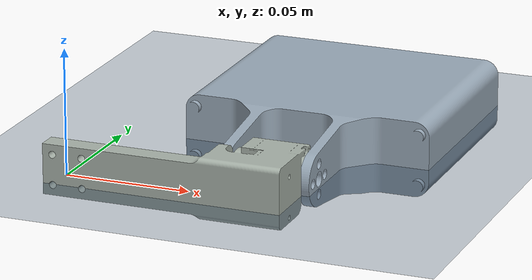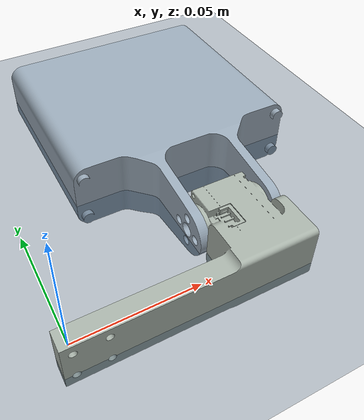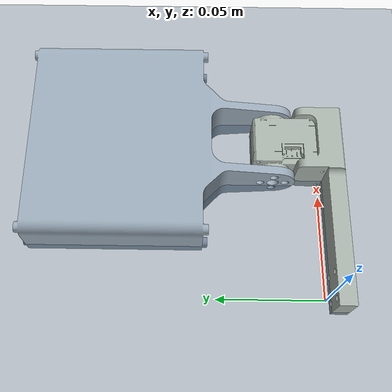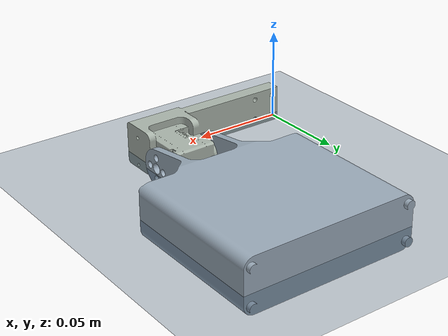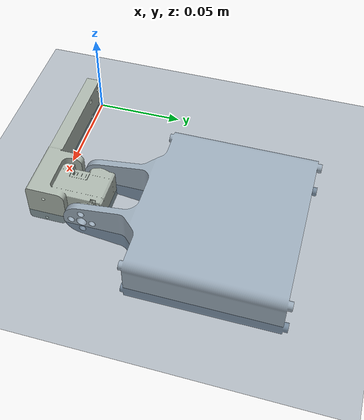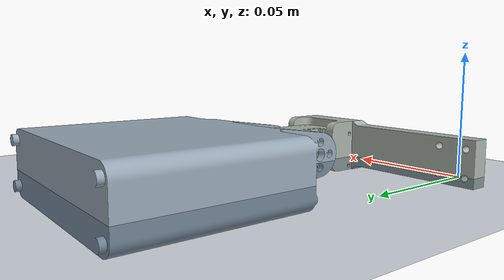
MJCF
<mujoco model="sysID_XC330_scene">
    <include file="sysID_XC330_fixed.xml" />
    <statistic center="0 0 0.2" extent="0.6" />
    <visual>
        <headlight diffuse="0.6 0.6 0.6" ambient="0.3 0.3 0.3" specular="0 0 0" />
        <rgba haze="0.15 0.25 0.35 1" />
        <global azimuth="160" elevation="-20" offwidth="1280" offheight="720" />
    </visual>
    <asset>
        <texture type="skybox" builtin="gradient" rgb1="0.3 0.5 0.7" rgb2="0 0 0" width="512" height="3072" />
        <texture type="2d" name="groundplane" builtin="checker" mark="edge" rgb1="0.2 0.3 0.4" rgb2="0.1 0.2 0.3" markrgb="0.8 0.8 0.8" width="300" height="300" />
        <material name="groundplane" texture="groundplane" texuniform="true" texrepeat="5 5" reflectance="0.0" />
    </asset>
    <worldbody>
        <light pos="0 0 1.5" dir="0 0 -1" directional="true" />
        <geom name="floor" size="0 0 0.05" type="plane" material="groundplane" condim="1" />
    </worldbody>
</mujoco>

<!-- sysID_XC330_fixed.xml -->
<mujoco model="sysID_XC330">
  <compiler angle="radian" autolimits="true" />
  <asset>
    <mesh name="xc330_visual" file="../assemblies/sysID_XC330/meshes/xc330_visual.stl" />
    <mesh name="arm_330_visual" file="../assemblies/sysID_XC330/meshes/arm_330_visual.stl" />
  </asset>
  <worldbody>
    <geom rgba="0.662234 0.702983 0.666427 1" mesh="xc330_visual" class="visual" />
    <body name="arm_330" pos="0.0894 0.0219499 0.0034194" quat="0.5 0.5 0.5 0.5">
      <inertial pos="0.0699496 0 -0.0145" quat="0.5 0.5 0.5 0.5" mass="0.0945" diaginertia="0.000175559 9.80867e-05 9.66481e-05" />
      <joint name="joint_0" pos="0 0 0" axis="0 0 1" limited="true" range="-1.5708 1.5708" damping="0.099" armature="0.002" frictionloss="0.239" />
      <geom rgba="0.604714 0.667227 0.72422 1" mesh="arm_330_visual" class="visual" />
    </body>
  </worldbody>
  <actuator>
    <position name="joint_0" joint="joint_0" kp="18.75" ctrlrange="-1.5708 1.5708" class="XC330" />
  </actuator>
  <default>
    <default class="XM430">
      <position forcerange="-3 3" />
    </default>
    <default class="XC430">
      <position forcerange="-2 2" />
    </default>
    <default class="2XC430">
      <position forcerange="-2 2" />
    </default>
    <default class="XL430">
      <position forcerange="-2 2" />
    </default>
    <default class="2XL430">
      <position forcerange="-2 2" />
    </default>
    <default class="XC330">
      <position forcerange="-1 1" />
    </default>
    <geom type="mesh" solref=".004 1" />
    <default class="visual">
      <geom contype="0" conaffinity="0" group="2" />
    </default>
    <default class="collision">
      <geom group="3" />
    </default>
  </default>
  <contact />
</mujoco>
